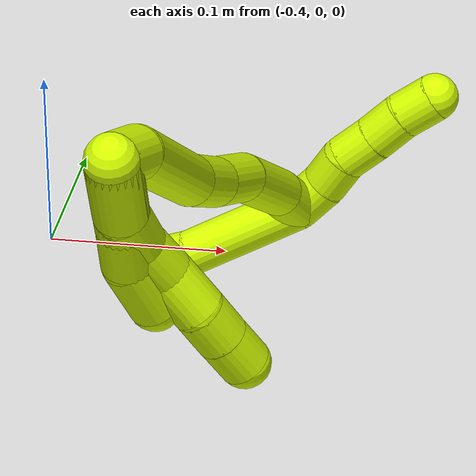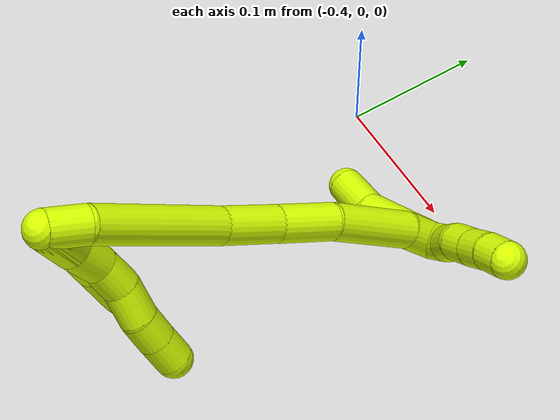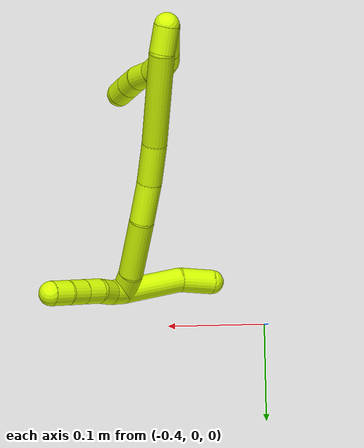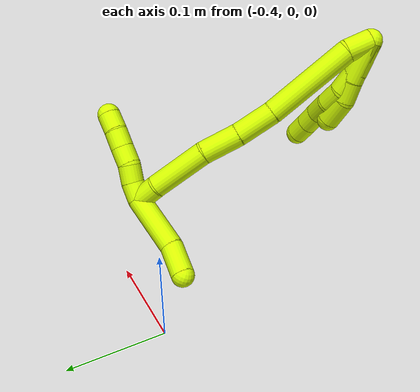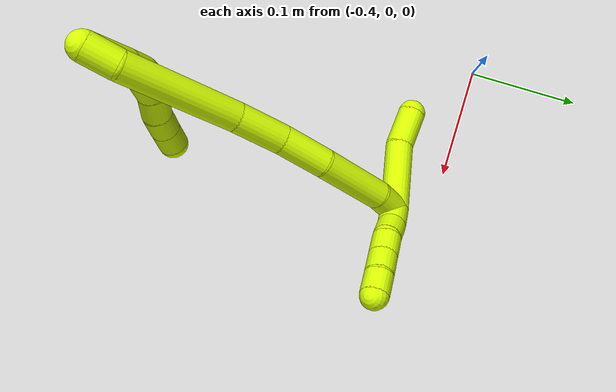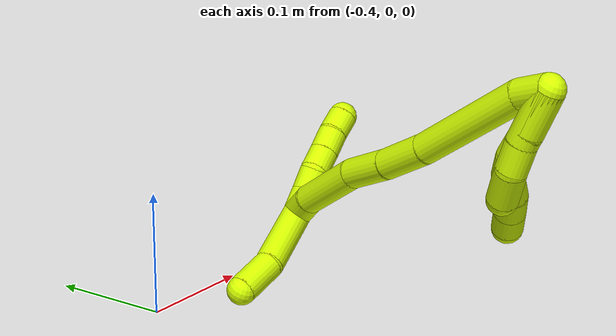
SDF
<sdf version="1.7">
 <world name="default">
  <model name="15">
   <static>0</static>
   <link name="15">
    <collision name="collision-cylinder-e_1_2_8">
     <pose>0.000253 -0.000505 -0.018408 3.11418 0.013738 0.929032</pose>
     <geometry><cylinder><radius>0.0125</radius><length>0.036832</length></cylinder></geometry>
     <surface>
      <friction><ode><mu>1.16</mu><mu2>1.16</mu2><slip1>0</slip1><slip2>0</slip2></ode></friction>
      <contact><ode><kp>1e+06</kp><kd>1</kd><max_vel>0</max_vel><min_depth>0.001</min_depth></ode></contact>
     </surface>
    </collision>
    <visual name="visual-cylinder-e_1_2_8">
     <pose>0.000253 -0.000505 -0.018408 3.11418 0.013738 0.929032</pose>
     <geometry><cylinder><radius>0.0125</radius><length>0.036832</length></cylinder></geometry>
     <material><ambient>0.835294 1 0 1</ambient></material>
    </visual>
    <collision name="collision-cylinder-e_2_8_9">
     <pose>0.002911 0.000587 -0.049569 -3.01706 0.184999 -1.95804</pose>
     <geometry><cylinder><radius>0.0125</radius><length>0.026153</length></cylinder></geometry>
     <surface>
      <friction><ode><mu>1.16</mu><mu2>1.16</mu2><slip1>0</slip1><slip2>0</slip2></ode></friction>
      <contact><ode><kp>1e+06</kp><kd>1</kd><max_vel>0</max_vel><min_depth>0.001</min_depth></ode></contact>
     </surface>
    </collision>
    <visual name="visual-cylinder-e_2_8_9">
     <pose>0.002911 0.000587 -0.049569 -3.01706 0.184999 -1.95804</pose>
     <geometry><cylinder><radius>0.0125</radius><length>0.026153</length></cylinder></geometry>
     <material><ambient>0.835294 1 0 1</ambient></material>
    </visual>
    <collision name="collision-cylinder-e_3_9_10">
     <pose>0.010436 0.002532 -0.072113 -3.10598 0.481493 -2.99676</pose>
     <geometry><cylinder><radius>0.0125</radius><length>0.022107</length></cylinder></geometry>
     <surface>
      <friction><ode><mu>1.16</mu><mu2>1.16</mu2><slip1>0</slip1><slip2>0</slip2></ode></friction>
      <contact><ode><kp>1e+06</kp><kd>1</kd><max_vel>0</max_vel><min_depth>0.001</min_depth></ode></contact>
     </surface>
    </collision>
    <visual name="visual-cylinder-e_3_9_10">
     <pose>0.010436 0.002532 -0.072113 -3.10598 0.481493 -2.99676</pose>
     <geometry><cylinder><radius>0.0125</radius><length>0.022107</length></cylinder></geometry>
     <material><ambient>0.835294 1 0 1</ambient></material>
    </visual>
    <collision name="collision-cylinder-e_4_10_11">
     <pose>0.023029 0.000769 -0.091441 2.92368 0.653119 2.51678</pose>
     <geometry><cylinder><radius>0.0125</radius><length>0.0246</length></cylinder></geometry>
     <surface>
      <friction><ode><mu>1.16</mu><mu2>1.16</mu2><slip1>0</slip1><slip2>0</slip2></ode></friction>
      <contact><ode><kp>1e+06</kp><kd>1</kd><max_vel>0</max_vel><min_depth>0.001</min_depth></ode></contact>
     </surface>
    </collision>
    <visual name="visual-cylinder-e_4_10_11">
     <pose>0.023029 0.000769 -0.091441 2.92368 0.653119 2.51678</pose>
     <geometry><cylinder><radius>0.0125</radius><length>0.0246</length></cylinder></geometry>
     <material><ambient>0.835294 1 0 1</ambient></material>
    </visual>
    <collision name="collision-cylinder-e_5_11_12">
     <pose>0.035427 -0.001827 -0.10975 3.08641 0.510899 2.93101</pose>
     <geometry><cylinder><radius>0.0125</radius><length>0.02014</length></cylinder></geometry>
     <surface>
      <friction><ode><mu>1.16</mu><mu2>1.16</mu2><slip1>0</slip1><slip2>0</slip2></ode></friction>
      <contact><ode><kp>1e+06</kp><kd>1</kd><max_vel>0</max_vel><min_depth>0.001</min_depth></ode></contact>
     </surface>
    </collision>
    <visual name="visual-cylinder-e_5_11_12">
     <pose>0.035427 -0.001827 -0.10975 3.08641 0.510899 2.93101</pose>
     <geometry><cylinder><radius>0.0125</radius><length>0.02014</length></cylinder></geometry>
     <material><ambient>0.835294 1 0 1</ambient></material>
    </visual>
    <collision name="collision-cylinder-e_6_12_6">
     <pose>0.045256 -0.002527 -0.127328 3.11715 0.508018 3.04752</pose>
     <geometry><cylinder><radius>0.0125</radius><length>0.020168</length></cylinder></geometry>
     <surface>
      <friction><ode><mu>1.16</mu><mu2>1.16</mu2><slip1>0</slip1><slip2>0</slip2></ode></friction>
      <contact><ode><kp>1e+06</kp><kd>1</kd><max_vel>0</max_vel><min_depth>0.001</min_depth></ode></contact>
     </surface>
    </collision>
    <visual name="visual-cylinder-e_6_12_6">
     <pose>0.045256 -0.002527 -0.127328 3.11715 0.508018 3.04752</pose>
     <geometry><cylinder><radius>0.0125</radius><length>0.020168</length></cylinder></geometry>
     <material><ambient>0.835294 1 0 1</ambient></material>
    </visual>
    <collision name="collision-cylinder-e_1_2_13">
     <pose>0.000302 -0.000435 -0.023204 3.12286 0.013032 1.21563</pose>
     <geometry><cylinder><radius>0.0125</radius><length>0.04642</length></cylinder></geometry>
     <surface>
      <friction><ode><mu>1.16</mu><mu2>1.16</mu2><slip1>0</slip1><slip2>0</slip2></ode></friction>
      <contact><ode><kp>1e+06</kp><kd>1</kd><max_vel>0</max_vel><min_depth>0.001</min_depth></ode></contact>
     </surface>
    </collision>
    <visual name="visual-cylinder-e_1_2_13">
     <pose>0.000302 -0.000435 -0.023204 3.12286 0.013032 1.21563</pose>
     <geometry><cylinder><radius>0.0125</radius><length>0.04642</length></cylinder></geometry>
     <material><ambient>0.835294 1 0 1</ambient></material>
    </visual>
    <collision name="collision-cylinder-e_2_13_14">
     <pose>0.001024 -0.002291 -0.058024 3.01985 0.0358 0.571362</pose>
     <geometry><cylinder><radius>0.0125</radius><length>0.023421</length></cylinder></geometry>
     <surface>
      <friction><ode><mu>1.16</mu><mu2>1.16</mu2><slip1>0</slip1><slip2>0</slip2></ode></friction>
      <contact><ode><kp>1e+06</kp><kd>1</kd><max_vel>0</max_vel><min_depth>0.001</min_depth></ode></contact>
     </surface>
    </collision>
    <visual name="visual-cylinder-e_2_13_14">
     <pose>0.001024 -0.002291 -0.058024 3.01985 0.0358 0.571362</pose>
     <geometry><cylinder><radius>0.0125</radius><length>0.023421</length></cylinder></geometry>
     <material><ambient>0.835294 1 0 1</ambient></material>
    </visual>
    <collision name="collision-cylinder-e_3_14_5">
     <pose>0.006442 -0.004011 -0.083864 3.12055 0.337889 3.01841</pose>
     <geometry><cylinder><radius>0.0125</radius><length>0.030159</length></cylinder></geometry>
     <surface>
      <friction><ode><mu>1.16</mu><mu2>1.16</mu2><slip1>0</slip1><slip2>0</slip2></ode></friction>
      <contact><ode><kp>1e+06</kp><kd>1</kd><max_vel>0</max_vel><min_depth>0.001</min_depth></ode></contact>
     </surface>
    </collision>
    <visual name="visual-cylinder-e_3_14_5">
     <pose>0.006442 -0.004011 -0.083864 3.12055 0.337889 3.01841</pose>
     <geometry><cylinder><radius>0.0125</radius><length>0.030159</length></cylinder></geometry>
     <material><ambient>0.835294 1 0 1</ambient></material>
    </visual>
    <collision name="collision-cylinder-e_1_2_15">
     <pose>0.001517 0.009778 -0.009318 -2.33213 0.111871 -0.259944</pose>
     <geometry><cylinder><radius>0.0125</radius><length>0.027183</length></cylinder></geometry>
     <surface>
      <friction><ode><mu>1.16</mu><mu2>1.16</mu2><slip1>0</slip1><slip2>0</slip2></ode></friction>
      <contact><ode><kp>1e+06</kp><kd>1</kd><max_vel>0</max_vel><min_depth>0.001</min_depth></ode></contact>
     </surface>
    </collision>
    <visual name="visual-cylinder-e_1_2_15">
     <pose>0.001517 0.009778 -0.009318 -2.33213 0.111871 -0.259944</pose>
     <geometry><cylinder><radius>0.0125</radius><length>0.027183</length></cylinder></geometry>
     <material><ambient>0.835294 1 0 1</ambient></material>
    </visual>
    <collision name="collision-cylinder-e_2_15_16">
     <pose>0.004916 0.044663 -0.061583 -2.61256 0.037807 -0.139368</pose>
     <geometry><cylinder><radius>0.0125</radius><length>0.099568</length></cylinder></geometry>
     <surface>
      <friction><ode><mu>1.16</mu><mu2>1.16</mu2><slip1>0</slip1><slip2>0</slip2></ode></friction>
      <contact><ode><kp>1e+06</kp><kd>1</kd><max_vel>0</max_vel><min_depth>0.001</min_depth></ode></contact>
     </surface>
    </collision>
    <visual name="visual-cylinder-e_2_15_16">
     <pose>0.004916 0.044663 -0.061583 -2.61256 0.037807 -0.139368</pose>
     <geometry><cylinder><radius>0.0125</radius><length>0.099568</length></cylinder></geometry>
     <material><ambient>0.835294 1 0 1</ambient></material>
    </visual>
    <collision name="collision-cylinder-e_3_16_17">
     <pose>0.008413 0.082363 -0.121619 -2.50655 0.075953 -0.230202</pose>
     <geometry><cylinder><radius>0.0125</radius><length>0.042577</length></cylinder></geometry>
     <surface>
      <friction><ode><mu>1.16</mu><mu2>1.16</mu2><slip1>0</slip1><slip2>0</slip2></ode></friction>
      <contact><ode><kp>1e+06</kp><kd>1</kd><max_vel>0</max_vel><min_depth>0.001</min_depth></ode></contact>
     </surface>
    </collision>
    <visual name="visual-cylinder-e_3_16_17">
     <pose>0.008413 0.082363 -0.121619 -2.50655 0.075953 -0.230202</pose>
     <geometry><cylinder><radius>0.0125</radius><length>0.042577</length></cylinder></geometry>
     <material><ambient>0.835294 1 0 1</ambient></material>
    </visual>
    <collision name="collision-cylinder-e_4_17_18">
     <pose>0.012737 0.108621 -0.154207 -2.41896 0.130331 -0.341995</pose>
     <geometry><cylinder><radius>0.0125</radius><length>0.04168</length></cylinder></geometry>
     <surface>
      <friction><ode><mu>1.16</mu><mu2>1.16</mu2><slip1>0</slip1><slip2>0</slip2></ode></friction>
      <contact><ode><kp>1e+06</kp><kd>1</kd><max_vel>0</max_vel><min_depth>0.001</min_depth></ode></contact>
     </surface>
    </collision>
    <visual name="visual-cylinder-e_4_17_18">
     <pose>0.012737 0.108621 -0.154207 -2.41896 0.130331 -0.341995</pose>
     <geometry><cylinder><radius>0.0125</radius><length>0.04168</length></cylinder></geometry>
     <material><ambient>0.835294 1 0 1</ambient></material>
    </visual>
    <collision name="collision-cylinder-e_5_18_19">
     <pose>0.019967 0.138262 -0.19644 -2.60297 0.144179 -0.511791</pose>
     <geometry><cylinder><radius>0.0125</radius><length>0.06294</length></cylinder></geometry>
     <surface>
      <friction><ode><mu>1.16</mu><mu2>1.16</mu2><slip1>0</slip1><slip2>0</slip2></ode></friction>
      <contact><ode><kp>1e+06</kp><kd>1</kd><max_vel>0</max_vel><min_depth>0.001</min_depth></ode></contact>
     </surface>
    </collision>
    <visual name="visual-cylinder-e_5_18_19">
     <pose>0.019967 0.138262 -0.19644 -2.60297 0.144179 -0.511791</pose>
     <geometry><cylinder><radius>0.0125</radius><length>0.06294</length></cylinder></geometry>
     <material><ambient>0.835294 1 0 1</ambient></material>
    </visual>
    <collision name="collision-cylinder-e_6_19_1">
     <pose>0.028005 0.158815 -0.234851 -2.76792 0.273336 -1.25789</pose>
     <geometry><cylinder><radius>0.0125</radius><length>0.026053</length></cylinder></geometry>
     <surface>
      <friction><ode><mu>1.16</mu><mu2>1.16</mu2><slip1>0</slip1><slip2>0</slip2></ode></friction>
      <contact><ode><kp>1e+06</kp><kd>1</kd><max_vel>0</max_vel><min_depth>0.001</min_depth></ode></contact>
     </surface>
    </collision>
    <visual name="visual-cylinder-e_6_19_1">
     <pose>0.028005 0.158815 -0.234851 -2.76792 0.273336 -1.25789</pose>
     <geometry><cylinder><radius>0.0125</radius><length>0.026053</length></cylinder></geometry>
     <material><ambient>0.835294 1 0 1</ambient></material>
    </visual>
    <collision name="collision-cylinder-e_1_1_20">
     <pose>0.004442 0.149098 -0.256501 2.17987 -0.998891 -1.61553</pose>
     <geometry><cylinder><radius>0.0125</radius><length>0.064409</length></cylinder></geometry>
     <surface>
      <friction><ode><mu>1.16</mu><mu2>1.16</mu2><slip1>0</slip1><slip2>0</slip2></ode></friction>
      <contact><ode><kp>1e+06</kp><kd>1</kd><max_vel>0</max_vel><min_depth>0.001</min_depth></ode></contact>
     </surface>
    </collision>
    <visual name="visual-cylinder-e_1_1_20">
     <pose>0.004442 0.149098 -0.256501 2.17987 -0.998891 -1.61553</pose>
     <geometry><cylinder><radius>0.0125</radius><length>0.064409</length></cylinder></geometry>
     <material><ambient>0.835294 1 0 1</ambient></material>
    </visual>
    <collision name="collision-cylinder-e_2_20_4">
     <pose>-0.038882 0.131357 -0.27287 2.64755 -1.15017 -2.39951</pose>
     <geometry><cylinder><radius>0.0125</radius><length>0.035591</length></cylinder></geometry>
     <surface>
      <friction><ode><mu>1.16</mu><mu2>1.16</mu2><slip1>0</slip1><slip2>0</slip2></ode></friction>
      <contact><ode><kp>1e+06</kp><kd>1</kd><max_vel>0</max_vel><min_depth>0.001</min_depth></ode></contact>
     </surface>
    </collision>
    <visual name="visual-cylinder-e_2_20_4">
     <pose>-0.038882 0.131357 -0.27287 2.64755 -1.15017 -2.39951</pose>
     <geometry><cylinder><radius>0.0125</radius><length>0.035591</length></cylinder></geometry>
     <material><ambient>0.835294 1 0 1</ambient></material>
    </visual>
    <collision name="collision-cylinder-e_1_1_21">
     <pose>0.037933 0.167726 -0.240194 -0.599846 0.696008 -0.223439</pose>
     <geometry><cylinder><radius>0.0125</radius><length>0.02</length></cylinder></geometry>
     <surface>
      <friction><ode><mu>1.16</mu><mu2>1.16</mu2><slip1>0</slip1><slip2>0</slip2></ode></friction>
      <contact><ode><kp>1e+06</kp><kd>1</kd><max_vel>0</max_vel><min_depth>0.001</min_depth></ode></contact>
     </surface>
    </collision>
    <visual name="visual-cylinder-e_1_1_21">
     <pose>0.037933 0.167726 -0.240194 -0.599846 0.696008 -0.223439</pose>
     <geometry><cylinder><radius>0.0125</radius><length>0.02</length></cylinder></geometry>
     <material><ambient>0.835294 1 0 1</ambient></material>
    </visual>
    <collision name="collision-cylinder-e_2_21_22">
     <pose>0.049183 0.175676 -0.225891 -0.426137 0.504988 -0.111522</pose>
     <geometry><cylinder><radius>0.0125</radius><length>0.02</length></cylinder></geometry>
     <surface>
      <friction><ode><mu>1.16</mu><mu2>1.16</mu2><slip1>0</slip1><slip2>0</slip2></ode></friction>
      <contact><ode><kp>1e+06</kp><kd>1</kd><max_vel>0</max_vel><min_depth>0.001</min_depth></ode></contact>
     </surface>
    </collision>
    <visual name="visual-cylinder-e_2_21_22">
     <pose>0.049183 0.175676 -0.225891 -0.426137 0.504988 -0.111522</pose>
     <geometry><cylinder><radius>0.0125</radius><length>0.02</length></cylinder></geometry>
     <material><ambient>0.835294 1 0 1</ambient></material>
    </visual>
    <collision name="collision-cylinder-e_3_22_23">
     <pose>0.061211 0.183302 -0.212244 -0.6148 0.802388 -0.267726</pose>
     <geometry><cylinder><radius>0.0125</radius><length>0.02</length></cylinder></geometry>
     <surface>
      <friction><ode><mu>1.16</mu><mu2>1.16</mu2><slip1>0</slip1><slip2>0</slip2></ode></friction>
      <contact><ode><kp>1e+06</kp><kd>1</kd><max_vel>0</max_vel><min_depth>0.001</min_depth></ode></contact>
     </surface>
    </collision>
    <visual name="visual-cylinder-e_3_22_23">
     <pose>0.061211 0.183302 -0.212244 -0.6148 0.802388 -0.267726</pose>
     <geometry><cylinder><radius>0.0125</radius><length>0.02</length></cylinder></geometry>
     <material><ambient>0.835294 1 0 1</ambient></material>
    </visual>
    <collision name="collision-cylinder-e_4_23_24">
     <pose>0.075135 0.191459 -0.200448 -0.595744 0.738781 -0.236612</pose>
     <geometry><cylinder><radius>0.0125</radius><length>0.02</length></cylinder></geometry>
     <surface>
      <friction><ode><mu>1.16</mu><mu2>1.16</mu2><slip1>0</slip1><slip2>0</slip2></ode></friction>
      <contact><ode><kp>1e+06</kp><kd>1</kd><max_vel>0</max_vel><min_depth>0.001</min_depth></ode></contact>
     </surface>
    </collision>
    <visual name="visual-cylinder-e_4_23_24">
     <pose>0.075135 0.191459 -0.200448 -0.595744 0.738781 -0.236612</pose>
     <geometry><cylinder><radius>0.0125</radius><length>0.02</length></cylinder></geometry>
     <material><ambient>0.835294 1 0 1</ambient></material>
    </visual>
    <collision name="collision-cylinder-e_5_24_3">
     <pose>0.089599 0.199364 -0.189216 -0.63367 0.883532 -0.307685</pose>
     <geometry><cylinder><radius>0.0125</radius><length>0.02</length></cylinder></geometry>
     <surface>
      <friction><ode><mu>1.16</mu><mu2>1.16</mu2><slip1>0</slip1><slip2>0</slip2></ode></friction>
      <contact><ode><kp>1e+06</kp><kd>1</kd><max_vel>0</max_vel><min_depth>0.001</min_depth></ode></contact>
     </surface>
    </collision>
    <visual name="visual-cylinder-e_5_24_3">
     <pose>0.089599 0.199364 -0.189216 -0.63367 0.883532 -0.307685</pose>
     <geometry><cylinder><radius>0.0125</radius><length>0.02</length></cylinder></geometry>
     <material><ambient>0.835294 1 0 1</ambient></material>
    </visual>
    <collision name="collision-sphere-3">
     <pose>0.097329 0.203121 -0.184103 0 -0 0</pose>
     <geometry><sphere><radius>0.0125</radius></sphere></geometry>
     <surface>
      <friction><ode><mu>1.16</mu><mu2>1.16</mu2><slip1>0</slip1><slip2>0</slip2></ode></friction>
      <contact><ode><kp>1e+06</kp><kd>1</kd><max_vel>0</max_vel><min_depth>0.001</min_depth></ode></contact>
     </surface>
    </collision>
    <visual name="visual-sphere-3">
     <pose>0.097329 0.203121 -0.184103 0 -0 0</pose>
     <geometry><sphere><radius>0.0125</radius></sphere></geometry>
     <material><ambient>0.835294 1 0 1</ambient></material>
    </visual>
    <collision name="collision-sphere-24">
     <pose>0.081869 0.195608 -0.194328 0 -0 0</pose>
     <geometry><sphere><radius>0.0125</radius></sphere></geometry>
     <surface>
      <friction><ode><mu>1.16</mu><mu2>1.16</mu2><slip1>0</slip1><slip2>0</slip2></ode></friction>
      <contact><ode><kp>1e+06</kp><kd>1</kd><max_vel>0</max_vel><min_depth>0.001</min_depth></ode></contact>
     </surface>
    </collision>
    <visual name="visual-sphere-24">
     <pose>0.081869 0.195608 -0.194328 0 -0 0</pose>
     <geometry><sphere><radius>0.0125</radius></sphere></geometry>
     <material><ambient>0.835294 1 0 1</ambient></material>
    </visual>
    <collision name="collision-sphere-23">
     <pose>0.068401 0.187311 -0.206567 0 -0 0</pose>
     <geometry><sphere><radius>0.0125</radius></sphere></geometry>
     <surface>
      <friction><ode><mu>1.16</mu><mu2>1.16</mu2><slip1>0</slip1><slip2>0</slip2></ode></friction>
      <contact><ode><kp>1e+06</kp><kd>1</kd><max_vel>0</max_vel><min_depth>0.001</min_depth></ode></contact>
     </surface>
    </collision>
    <visual name="visual-sphere-23">
     <pose>0.068401 0.187311 -0.206567 0 -0 0</pose>
     <geometry><sphere><radius>0.0125</radius></sphere></geometry>
     <material><ambient>0.835294 1 0 1</ambient></material>
    </visual>
    <collision name="collision-sphere-22">
     <pose>0.054021 0.179294 -0.217922 0 -0 0</pose>
     <geometry><sphere><radius>0.0125</radius></sphere></geometry>
     <surface>
      <friction><ode><mu>1.16</mu><mu2>1.16</mu2><slip1>0</slip1><slip2>0</slip2></ode></friction>
      <contact><ode><kp>1e+06</kp><kd>1</kd><max_vel>0</max_vel><min_depth>0.001</min_depth></ode></contact>
     </surface>
    </collision>
    <visual name="visual-sphere-22">
     <pose>0.054021 0.179294 -0.217922 0 -0 0</pose>
     <geometry><sphere><radius>0.0125</radius></sphere></geometry>
     <material><ambient>0.835294 1 0 1</ambient></material>
    </visual>
    <collision name="collision-sphere-21">
     <pose>0.044345 0.172058 -0.23386 0 -0 0</pose>
     <geometry><sphere><radius>0.0125</radius></sphere></geometry>
     <surface>
      <friction><ode><mu>1.16</mu><mu2>1.16</mu2><slip1>0</slip1><slip2>0</slip2></ode></friction>
      <contact><ode><kp>1e+06</kp><kd>1</kd><max_vel>0</max_vel><min_depth>0.001</min_depth></ode></contact>
     </surface>
    </collision>
    <visual name="visual-sphere-21">
     <pose>0.044345 0.172058 -0.23386 0 -0 0</pose>
     <geometry><sphere><radius>0.0125</radius></sphere></geometry>
     <material><ambient>0.835294 1 0 1</ambient></material>
    </visual>
    <collision name="collision-sphere-4">
     <pose>-0.055127 0.127911 -0.279268 0 -0 0</pose>
     <geometry><sphere><radius>0.0125</radius></sphere></geometry>
     <surface>
      <friction><ode><mu>1.16</mu><mu2>1.16</mu2><slip1>0</slip1><slip2>0</slip2></ode></friction>
      <contact><ode><kp>1e+06</kp><kd>1</kd><max_vel>0</max_vel><min_depth>0.001</min_depth></ode></contact>
     </surface>
    </collision>
    <visual name="visual-sphere-4">
     <pose>-0.055127 0.127911 -0.279268 0 -0 0</pose>
     <geometry><sphere><radius>0.0125</radius></sphere></geometry>
     <material><ambient>0.835294 1 0 1</ambient></material>
    </visual>
    <collision name="collision-sphere-20">
     <pose>-0.022638 0.134802 -0.266473 0 -0 0</pose>
     <geometry><sphere><radius>0.0125</radius></sphere></geometry>
     <surface>
      <friction><ode><mu>1.16</mu><mu2>1.16</mu2><slip1>0</slip1><slip2>0</slip2></ode></friction>
      <contact><ode><kp>1e+06</kp><kd>1</kd><max_vel>0</max_vel><min_depth>0.001</min_depth></ode></contact>
     </surface>
    </collision>
    <visual name="visual-sphere-20">
     <pose>-0.022638 0.134802 -0.266473 0 -0 0</pose>
     <geometry><sphere><radius>0.0125</radius></sphere></geometry>
     <material><ambient>0.835294 1 0 1</ambient></material>
    </visual>
    <collision name="collision-sphere-12">
     <pose>0.040351 -0.002311 -0.11852 0 -0 0</pose>
     <geometry><sphere><radius>0.0125</radius></sphere></geometry>
     <surface>
      <friction><ode><mu>1.16</mu><mu2>1.16</mu2><slip1>0</slip1><slip2>0</slip2></ode></friction>
      <contact><ode><kp>1e+06</kp><kd>1</kd><max_vel>0</max_vel><min_depth>0.001</min_depth></ode></contact>
     </surface>
    </collision>
    <visual name="visual-sphere-12">
     <pose>0.040351 -0.002311 -0.11852 0 -0 0</pose>
     <geometry><sphere><radius>0.0125</radius></sphere></geometry>
     <material><ambient>0.835294 1 0 1</ambient></material>
    </visual>
    <collision name="collision-sphere-11">
     <pose>0.030503 -0.001342 -0.100979 0 -0 0</pose>
     <geometry><sphere><radius>0.0125</radius></sphere></geometry>
     <surface>
      <friction><ode><mu>1.16</mu><mu2>1.16</mu2><slip1>0</slip1><slip2>0</slip2></ode></friction>
      <contact><ode><kp>1e+06</kp><kd>1</kd><max_vel>0</max_vel><min_depth>0.001</min_depth></ode></contact>
     </surface>
    </collision>
    <visual name="visual-sphere-11">
     <pose>0.030503 -0.001342 -0.100979 0 -0 0</pose>
     <geometry><sphere><radius>0.0125</radius></sphere></geometry>
     <material><ambient>0.835294 1 0 1</ambient></material>
    </visual>
    <collision name="collision-sphere-10">
     <pose>0.015555 0.002881 -0.081904 0 -0 0</pose>
     <geometry><sphere><radius>0.0125</radius></sphere></geometry>
     <surface>
      <friction><ode><mu>1.16</mu><mu2>1.16</mu2><slip1>0</slip1><slip2>0</slip2></ode></friction>
      <contact><ode><kp>1e+06</kp><kd>1</kd><max_vel>0</max_vel><min_depth>0.001</min_depth></ode></contact>
     </surface>
    </collision>
    <visual name="visual-sphere-10">
     <pose>0.015555 0.002881 -0.081904 0 -0 0</pose>
     <geometry><sphere><radius>0.0125</radius></sphere></geometry>
     <material><ambient>0.835294 1 0 1</ambient></material>
    </visual>
    <collision name="collision-sphere-9">
     <pose>0.005317 0.002184 -0.062323 0 -0 0</pose>
     <geometry><sphere><radius>0.0125</radius></sphere></geometry>
     <surface>
      <friction><ode><mu>1.16</mu><mu2>1.16</mu2><slip1>0</slip1><slip2>0</slip2></ode></friction>
      <contact><ode><kp>1e+06</kp><kd>1</kd><max_vel>0</max_vel><min_depth>0.001</min_depth></ode></contact>
     </surface>
    </collision>
    <visual name="visual-sphere-9">
     <pose>0.005317 0.002184 -0.062323 0 -0 0</pose>
     <geometry><sphere><radius>0.0125</radius></sphere></geometry>
     <material><ambient>0.835294 1 0 1</ambient></material>
    </visual>
    <collision name="collision-sphere-2">
     <geometry><sphere><radius>0.0125</radius></sphere></geometry>
     <surface>
      <friction><ode><mu>1.16</mu><mu2>1.16</mu2><slip1>0</slip1><slip2>0</slip2></ode></friction>
      <contact><ode><kp>1e+06</kp><kd>1</kd><max_vel>0</max_vel><min_depth>0.001</min_depth></ode></contact>
     </surface>
    </collision>
    <visual name="visual-sphere-2">
     <geometry><sphere><radius>0.0125</radius></sphere></geometry>
     <material><ambient>0.835294 1 0 1</ambient></material>
    </visual>
    <collision name="collision-sphere-19">
     <pose>0.024489 0.154237 -0.223174 0 -0 0</pose>
     <geometry><sphere><radius>0.0125</radius></sphere></geometry>
     <surface>
      <friction><ode><mu>1.16</mu><mu2>1.16</mu2><slip1>0</slip1><slip2>0</slip2></ode></friction>
      <contact><ode><kp>1e+06</kp><kd>1</kd><max_vel>0</max_vel><min_depth>0.001</min_depth></ode></contact>
     </surface>
    </collision>
    <visual name="visual-sphere-19">
     <pose>0.024489 0.154237 -0.223174 0 -0 0</pose>
     <geometry><sphere><radius>0.0125</radius></sphere></geometry>
     <material><ambient>0.835294 1 0 1</ambient></material>
    </visual>
    <collision name="collision-sphere-8">
     <pose>0.000506 -0.00101 -0.036815 0 -0 0</pose>
     <geometry><sphere><radius>0.0125</radius></sphere></geometry>
     <surface>
      <friction><ode><mu>1.16</mu><mu2>1.16</mu2><slip1>0</slip1><slip2>0</slip2></ode></friction>
      <contact><ode><kp>1e+06</kp><kd>1</kd><max_vel>0</max_vel><min_depth>0.001</min_depth></ode></contact>
     </surface>
    </collision>
    <visual name="visual-sphere-8">
     <pose>0.000506 -0.00101 -0.036815 0 -0 0</pose>
     <geometry><sphere><radius>0.0125</radius></sphere></geometry>
     <material><ambient>0.835294 1 0 1</ambient></material>
    </visual>
    <collision name="collision-sphere-6">
     <pose>0.050161 -0.002742 -0.136136 0 -0 0</pose>
     <geometry><sphere><radius>0.0125</radius></sphere></geometry>
     <surface>
      <friction><ode><mu>1.16</mu><mu2>1.16</mu2><slip1>0</slip1><slip2>0</slip2></ode></friction>
      <contact><ode><kp>1e+06</kp><kd>1</kd><max_vel>0</max_vel><min_depth>0.001</min_depth></ode></contact>
     </surface>
    </collision>
    <visual name="visual-sphere-6">
     <pose>0.050161 -0.002742 -0.136136 0 -0 0</pose>
     <geometry><sphere><radius>0.0125</radius></sphere></geometry>
     <material><ambient>0.835294 1 0 1</ambient></material>
    </visual>
    <collision name="collision-sphere-13">
     <pose>0.000605 -0.000869 -0.046408 0 -0 0</pose>
     <geometry><sphere><radius>0.0125</radius></sphere></geometry>
     <surface>
      <friction><ode><mu>1.16</mu><mu2>1.16</mu2><slip1>0</slip1><slip2>0</slip2></ode></friction>
      <contact><ode><kp>1e+06</kp><kd>1</kd><max_vel>0</max_vel><min_depth>0.001</min_depth></ode></contact>
     </surface>
    </collision>
    <visual name="visual-sphere-13">
     <pose>0.000605 -0.000869 -0.046408 0 -0 0</pose>
     <geometry><sphere><radius>0.0125</radius></sphere></geometry>
     <material><ambient>0.835294 1 0 1</ambient></material>
    </visual>
    <collision name="collision-sphere-14">
     <pose>0.001443 -0.003712 -0.06964 0 -0 0</pose>
     <geometry><sphere><radius>0.0125</radius></sphere></geometry>
     <surface>
      <friction><ode><mu>1.16</mu><mu2>1.16</mu2><slip1>0</slip1><slip2>0</slip2></ode></friction>
      <contact><ode><kp>1e+06</kp><kd>1</kd><max_vel>0</max_vel><min_depth>0.001</min_depth></ode></contact>
     </surface>
    </collision>
    <visual name="visual-sphere-14">
     <pose>0.001443 -0.003712 -0.06964 0 -0 0</pose>
     <geometry><sphere><radius>0.0125</radius></sphere></geometry>
     <material><ambient>0.835294 1 0 1</ambient></material>
    </visual>
    <collision name="collision-sphere-5">
     <pose>0.011441 -0.004311 -0.098088 0 -0 0</pose>
     <geometry><sphere><radius>0.0125</radius></sphere></geometry>
     <surface>
      <friction><ode><mu>1.16</mu><mu2>1.16</mu2><slip1>0</slip1><slip2>0</slip2></ode></friction>
      <contact><ode><kp>1e+06</kp><kd>1</kd><max_vel>0</max_vel><min_depth>0.001</min_depth></ode></contact>
     </surface>
    </collision>
    <visual name="visual-sphere-5">
     <pose>0.011441 -0.004311 -0.098088 0 -0 0</pose>
     <geometry><sphere><radius>0.0125</radius></sphere></geometry>
     <material><ambient>0.835294 1 0 1</ambient></material>
    </visual>
    <collision name="collision-sphere-15">
     <pose>0.003035 0.019555 -0.018636 0 -0 0</pose>
     <geometry><sphere><radius>0.0125</radius></sphere></geometry>
     <surface>
      <friction><ode><mu>1.16</mu><mu2>1.16</mu2><slip1>0</slip1><slip2>0</slip2></ode></friction>
      <contact><ode><kp>1e+06</kp><kd>1</kd><max_vel>0</max_vel><min_depth>0.001</min_depth></ode></contact>
     </surface>
    </collision>
    <visual name="visual-sphere-15">
     <pose>0.003035 0.019555 -0.018636 0 -0 0</pose>
     <geometry><sphere><radius>0.0125</radius></sphere></geometry>
     <material><ambient>0.835294 1 0 1</ambient></material>
    </visual>
    <collision name="collision-sphere-16">
     <pose>0.006798 0.069771 -0.10453 0 -0 0</pose>
     <geometry><sphere><radius>0.0125</radius></sphere></geometry>
     <surface>
      <friction><ode><mu>1.16</mu><mu2>1.16</mu2><slip1>0</slip1><slip2>0</slip2></ode></friction>
      <contact><ode><kp>1e+06</kp><kd>1</kd><max_vel>0</max_vel><min_depth>0.001</min_depth></ode></contact>
     </surface>
    </collision>
    <visual name="visual-sphere-16">
     <pose>0.006798 0.069771 -0.10453 0 -0 0</pose>
     <geometry><sphere><radius>0.0125</radius></sphere></geometry>
     <material><ambient>0.835294 1 0 1</ambient></material>
    </visual>
    <collision name="collision-sphere-17">
     <pose>0.010029 0.094955 -0.138708 0 -0 0</pose>
     <geometry><sphere><radius>0.0125</radius></sphere></geometry>
     <surface>
      <friction><ode><mu>1.16</mu><mu2>1.16</mu2><slip1>0</slip1><slip2>0</slip2></ode></friction>
      <contact><ode><kp>1e+06</kp><kd>1</kd><max_vel>0</max_vel><min_depth>0.001</min_depth></ode></contact>
     </surface>
    </collision>
    <visual name="visual-sphere-17">
     <pose>0.010029 0.094955 -0.138708 0 -0 0</pose>
     <geometry><sphere><radius>0.0125</radius></sphere></geometry>
     <material><ambient>0.835294 1 0 1</ambient></material>
    </visual>
    <collision name="collision-sphere-18">
     <pose>0.015446 0.122287 -0.169706 0 -0 0</pose>
     <geometry><sphere><radius>0.0125</radius></sphere></geometry>
     <surface>
      <friction><ode><mu>1.16</mu><mu2>1.16</mu2><slip1>0</slip1><slip2>0</slip2></ode></friction>
      <contact><ode><kp>1e+06</kp><kd>1</kd><max_vel>0</max_vel><min_depth>0.001</min_depth></ode></contact>
     </surface>
    </collision>
    <visual name="visual-sphere-18">
     <pose>0.015446 0.122287 -0.169706 0 -0 0</pose>
     <geometry><sphere><radius>0.0125</radius></sphere></geometry>
     <material><ambient>0.835294 1 0 1</ambient></material>
    </visual>
    <collision name="collision-sphere-1">
     <pose>0.031522 0.163394 -0.246529 0 -0 0</pose>
     <geometry><sphere><radius>0.0125</radius></sphere></geometry>
     <surface>
      <friction><ode><mu>1.16</mu><mu2>1.16</mu2><slip1>0</slip1><slip2>0</slip2></ode></friction>
      <contact><ode><kp>1e+06</kp><kd>1</kd><max_vel>0</max_vel><min_depth>0.001</min_depth></ode></contact>
     </surface>
    </collision>
    <visual name="visual-sphere-1">
     <pose>0.031522 0.163394 -0.246529 0 -0 0</pose>
     <geometry><sphere><radius>0.0125</radius></sphere></geometry>
     <material><ambient>0.835294 1 0 1</ambient></material>
    </visual>
    <inertial>
     <pose>0.015081 0.07734 -0.132836 0 -0 0</pose>
     <mass>0.75</mass>
     <inertia>
      <ixx>9.9e-05</ixx>
      <ixy>0</ixy>
      <ixz>0</ixz>
      <iyy>-9.2e-05</iyy>
      <iyz>0</iyz>
      <izz>-8.7e-05</izz>
     </inertia>
    </inertial>
   </link>
   <pose>-0.303847 -0.286236 0.205854 0.444441 0.060134 -0.104104</pose>
  </model>
 </world>
</sdf>
